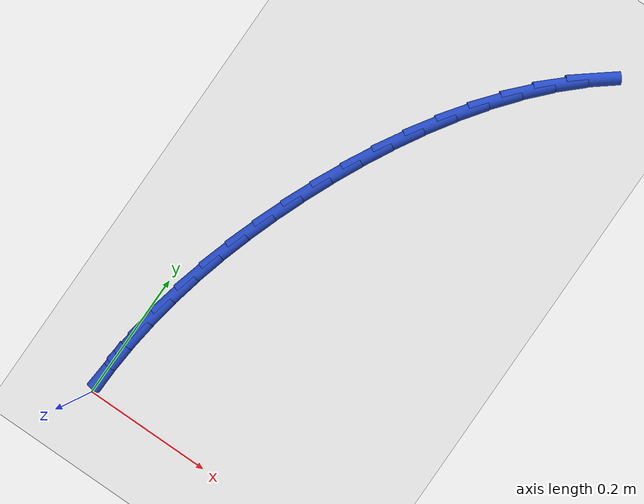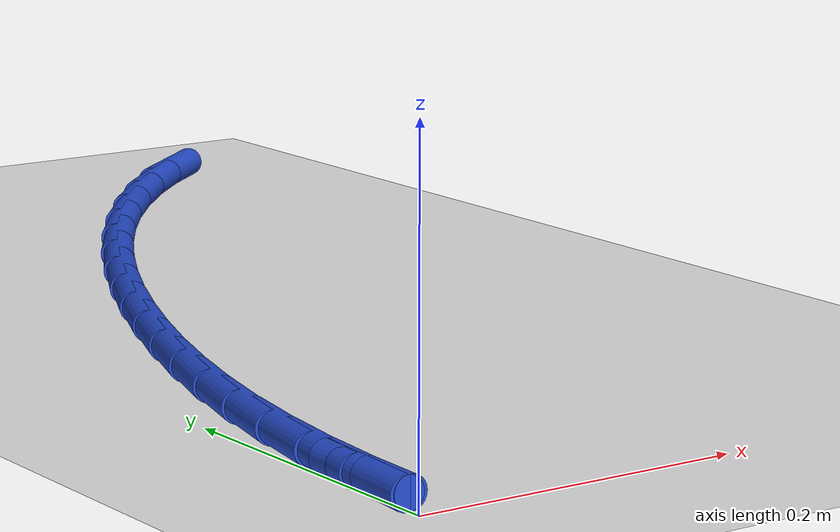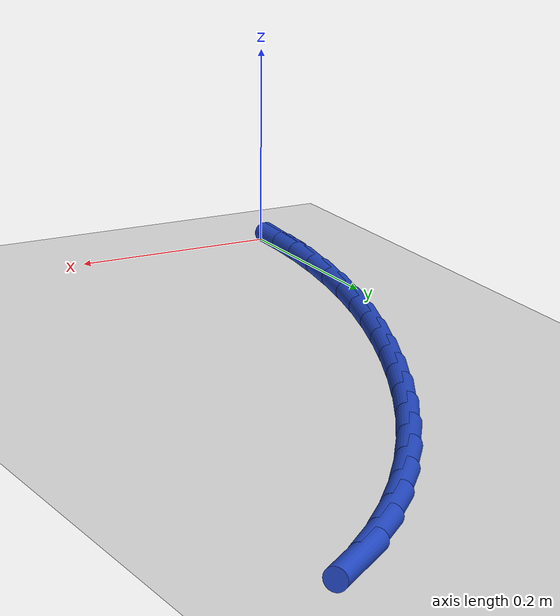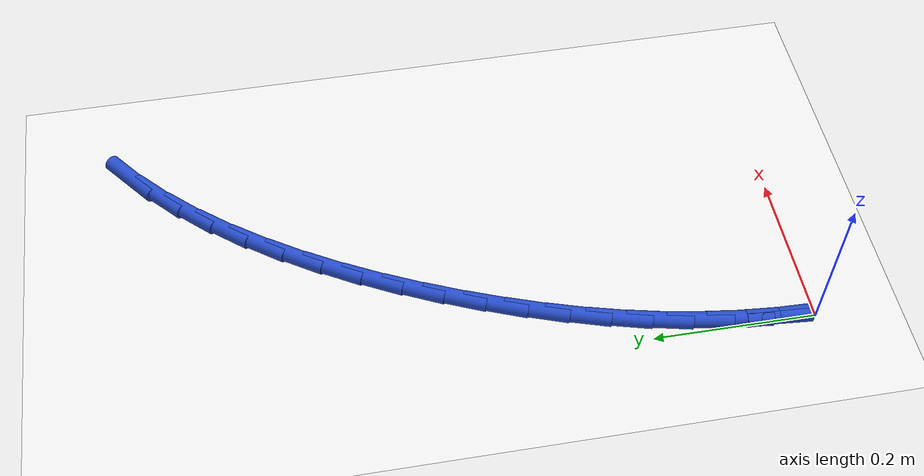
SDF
<sdf version="1.6">
 <world name="default">
  <model name="ground_plane">
   <static>1</static>
   <link name="link">
    <collision name="collision">
     <geometry><plane><normal>0 0 1</normal><size>100 100</size></plane></geometry>
     <surface><friction><ode><mu>100</mu><mu2>50</mu2></ode></friction></surface>
    </collision>
    <visual name="visual">
     <cast_shadows>0</cast_shadows>
     <geometry><plane><normal>0 0 1</normal><size>100 100</size></plane></geometry>
     <material>
      <script><uri>file://media/materials/scripts/gazebo.material</uri><name>Gazebo/WhiteGlow</name></script>
     </material>
    </visual>
   </link>
  </model>
  <model name="line">
   <link name="link_1">
    <pose>0.001416774368375935 0.047509021973724294 0.01 0 1.57 1.4903407403062767</pose>
    <collision name="collision">
     <geometry><cylinder><radius>0.01</radius><length>0.08</length></cylinder></geometry>
    </collision>
    <visual name="visual">
     <material>
      <script><name>Gazebo/Blue</name><uri>file://media/materials/scripts/gazebo.material</uri></script>
     </material>
     <geometry><cylinder><radius>0.01</radius><length>0.08</length></cylinder></geometry>
    </visual>
   </link>
   <link name="link_2">
    <pose>0.0052270917090097594 0.0947660544927207 0.01 0 1.57 1.4412061075957883</pose>
    <collision name="collision">
     <geometry><cylinder><radius>0.01</radius><length>0.08</length></cylinder></geometry>
    </collision>
    <visual name="visual">
     <material>
      <script><name>Gazebo/Blue</name><uri>file://media/materials/scripts/gazebo.material</uri></script>
     </material>
     <geometry><cylinder><radius>0.01</radius><length>0.08</length></cylinder></geometry>
    </visual>
   </link>
   <link name="link_3">
    <pose>0.011358834308184814 0.141817285810648 0.01 0 1.57 1.3939315058798505</pose>
    <collision name="collision">
     <geometry><cylinder><radius>0.01</radius><length>0.08</length></cylinder></geometry>
    </collision>
    <visual name="visual">
     <material>
      <script><name>Gazebo/Blue</name><uri>file://media/materials/scripts/gazebo.material</uri></script>
     </material>
     <geometry><cylinder><radius>0.01</radius><length>0.08</length></cylinder></geometry>
    </visual>
   </link>
   <link name="link_4">
    <pose>0.01973988445218445 0.1887089041811647 0.01 0 1.57 1.34880754402212</pose>
    <collision name="collision">
     <geometry><cylinder><radius>0.01</radius><length>0.08</length></cylinder></geometry>
    </collision>
    <visual name="visual">
     <material>
      <script><name>Gazebo/Blue</name><uri>file://media/materials/scripts/gazebo.material</uri></script>
     </material>
     <geometry><cylinder><radius>0.01</radius><length>0.08</length></cylinder></geometry>
    </visual>
   </link>
   <link name="link_5">
    <pose>0.030298124427292017 0.2354870978579295 0.01 0 1.57 1.3060600844356591</pose>
    <collision name="collision">
     <geometry><cylinder><radius>0.01</radius><length>0.08</length></cylinder></geometry>
    </collision>
    <visual name="visual">
     <material>
      <script><name>Gazebo/Blue</name><uri>file://media/materials/scripts/gazebo.material</uri></script>
     </material>
     <geometry><cylinder><radius>0.01</radius><length>0.08</length></cylinder></geometry>
    </visual>
   </link>
   <link name="link_6">
    <pose>0.04296143651979088 0.282198055094601 0.01 0 1.57 1.2658509156572701</pose>
    <collision name="collision">
     <geometry><cylinder><radius>0.01</radius><length>0.08</length></cylinder></geometry>
    </collision>
    <visual name="visual">
     <material>
      <script><name>Gazebo/Blue</name><uri>file://media/materials/scripts/gazebo.material</uri></script>
     </material>
     <geometry><cylinder><radius>0.01</radius><length>0.08</length></cylinder></geometry>
    </visual>
   </link>
   <link name="link_7">
    <pose>0.0576577030159644 0.32888796414483773 0.01 0 1.57 1.2282820878308067</pose>
    <collision name="collision">
     <geometry><cylinder><radius>0.01</radius><length>0.08</length></cylinder></geometry>
    </collision>
    <visual name="visual">
     <material>
      <script><name>Gazebo/Blue</name><uri>file://media/materials/scripts/gazebo.material</uri></script>
     </material>
     <geometry><cylinder><radius>0.01</radius><length>0.08</length></cylinder></geometry>
    </visual>
   </link>
   <link name="link_8">
    <pose>0.07431480620209596 0.37560301326229845 0.01 0 1.57 1.19337467369707</pose>
    <collision name="collision">
     <geometry><cylinder><radius>0.01</radius><length>0.08</length></cylinder></geometry>
    </collision>
    <visual name="visual">
     <material>
      <script><name>Gazebo/Blue</name><uri>file://media/materials/scripts/gazebo.material</uri></script>
     </material>
     <geometry><cylinder><radius>0.01</radius><length>0.08</length></cylinder></geometry>
    </visual>
   </link>
   <link name="link_9">
    <pose>0.09286111316814986 0.4223867797617684 0.01 0 1.57 1.159395876455431</pose>
    <collision name="collision">
     <geometry><cylinder><radius>0.01</radius><length>0.08</length></cylinder></geometry>
    </collision>
    <visual name="visual">
     <material>
      <script><name>Gazebo/Blue</name><uri>file://media/materials/scripts/gazebo.material</uri></script>
     </material>
     <geometry><cylinder><radius>0.01</radius><length>0.08</length></cylinder></geometry>
    </visual>
   </link>
   <link name="link_10">
    <pose>0.11325387216319613 0.4691272997689585 0.01 0 1.57 1.123353978053719</pose>
    <collision name="collision">
     <geometry><cylinder><radius>0.01</radius><length>0.08</length></cylinder></geometry>
    </collision>
    <visual name="visual">
     <material>
      <script><name>Gazebo/Blue</name><uri>file://media/materials/scripts/gazebo.material</uri></script>
     </material>
     <geometry><cylinder><radius>0.01</radius><length>0.08</length></cylinder></geometry>
    </visual>
   </link>
   <link name="link_11">
    <pose>0.13549497857660014 0.5154721595971309 0.01 0 1.57 1.0844694708845348</pose>
    <collision name="collision">
     <geometry><cylinder><radius>0.01</radius><length>0.08</length></cylinder></geometry>
    </collision>
    <visual name="visual">
     <material>
      <script><name>Gazebo/Blue</name><uri>file://media/materials/scripts/gazebo.material</uri></script>
     </material>
     <geometry><cylinder><radius>0.01</radius><length>0.08</length></cylinder></geometry>
    </visual>
   </link>
   <link name="link_12">
    <pose>0.1595901545771456 0.5610483362128476 0.01 0 1.57 1.0421367316816996</pose>
    <collision name="collision">
     <geometry><cylinder><radius>0.01</radius><length>0.08</length></cylinder></geometry>
    </collision>
    <visual name="visual">
     <material>
      <script><name>Gazebo/Blue</name><uri>file://media/materials/scripts/gazebo.material</uri></script>
     </material>
     <geometry><cylinder><radius>0.01</radius><length>0.08</length></cylinder></geometry>
    </visual>
   </link>
   <link name="link_13">
    <pose>0.18554512233361642 0.6054828065826703 0.01 0 1.57 0.9956890752787328</pose>
    <collision name="collision">
     <geometry><cylinder><radius>0.01</radius><length>0.08</length></cylinder></geometry>
    </collision>
    <visual name="visual">
     <material>
      <script><name>Gazebo/Blue</name><uri>file://media/materials/scripts/gazebo.material</uri></script>
     </material>
     <geometry><cylinder><radius>0.01</radius><length>0.08</length></cylinder></geometry>
    </visual>
   </link>
   <link name="link_14">
    <pose>0.21336560401479646 0.6484025476731614 0.01 0 1.57 0.9443908749641493</pose>
    <collision name="collision">
     <geometry><cylinder><radius>0.01</radius><length>0.08</length></cylinder></geometry>
    </collision>
    <visual name="visual">
     <material>
      <script><name>Gazebo/Blue</name><uri>file://media/materials/scripts/gazebo.material</uri></script>
     </material>
     <geometry><cylinder><radius>0.01</radius><length>0.08</length></cylinder></geometry>
    </visual>
   </link>
   <link name="link_15">
    <pose>0.24305732178946954 0.6894345364508829 0.01 0 1.57 0.8874387240220154</pose>
    <collision name="collision">
     <geometry><cylinder><radius>0.01</radius><length>0.08</length></cylinder></geometry>
    </collision>
    <visual name="visual">
     <material>
      <script><name>Gazebo/Blue</name><uri>file://media/materials/scripts/gazebo.material</uri></script>
     </material>
     <geometry><cylinder><radius>0.01</radius><length>0.08</length></cylinder></geometry>
    </visual>
   </link>
   <link name="link_16">
    <pose>0.27462599782641944 0.7282057498823967 0.01 0 1.57 0.8239780340291915</pose>
    <collision name="collision">
     <geometry><cylinder><radius>0.01</radius><length>0.08</length></cylinder></geometry>
    </collision>
    <visual name="visual">
     <material>
      <script><name>Gazebo/Blue</name><uri>file://media/materials/scripts/gazebo.material</uri></script>
     </material>
     <geometry><cylinder><radius>0.01</radius><length>0.08</length></cylinder></geometry>
    </visual>
   </link>
   <link name="link_17">
    <pose>0.30807735429443006 0.7643431649342649 0.01 0 1.57 0.7531447976890759</pose>
    <collision name="collision">
     <geometry><cylinder><radius>0.01</radius><length>0.08</length></cylinder></geometry>
    </collision>
    <visual name="visual">
     <material>
      <script><name>Gazebo/Blue</name><uri>file://media/materials/scripts/gazebo.material</uri></script>
     </material>
     <geometry><cylinder><radius>0.01</radius><length>0.08</length></cylinder></geometry>
    </visual>
   </link>
   <link name="link_18">
    <pose>0.3434171133622853 0.79747375857305 0.01 0 1.57 0.6741452482695379</pose>
    <collision name="collision">
     <geometry><cylinder><radius>0.01</radius><length>0.08</length></cylinder></geometry>
    </collision>
    <visual name="visual">
     <material>
      <script><name>Gazebo/Blue</name><uri>file://media/materials/scripts/gazebo.material</uri></script>
     </material>
     <geometry><cylinder><radius>0.01</radius><length>0.08</length></cylinder></geometry>
    </visual>
   </link>
   <link name="link_151">
    <pose>0.0014355944424988415 0.047474612907749784 0.01 0 1.57 1.540566336051648</pose>
    <collision name="collision">
     <geometry><cylinder><radius>0.01</radius><length>0.08</length></cylinder></geometry>
    </collision>
    <visual name="visual">
     <material>
      <script><name>Gazebo/Blue</name><uri>file://media/materials/scripts/gazebo.material</uri></script>
     </material>
     <geometry><cylinder><radius>0.01</radius><length>0.08</length></cylinder></geometry>
    </visual>
   </link>
  </model>
 </world>
</sdf>
